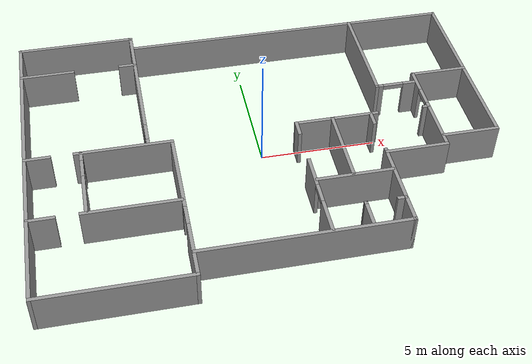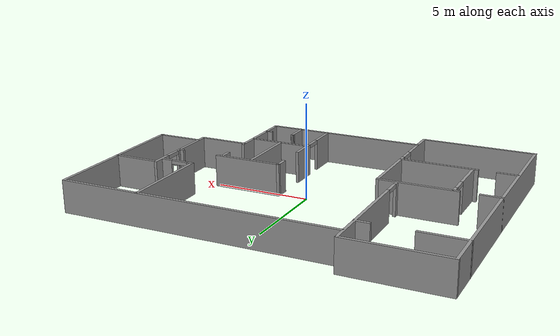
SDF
<?xml version='1.0'?>
<sdf version='1.7'>
  <model name='pangyon_home_plane_a'>
    <pose>-0.066999 0.094435 0 0 -0 0</pose>
    <link name='Wall_0'>
      <collision name='Wall_0_Collision'>
        <geometry>
          <box>
            <size>14.577 0.15 1.7</size>
          </box>
        </geometry>
        <pose>0 0 0.85 0 -0 0</pose>
      </collision>
      <visual name='Wall_0_Visual'>
        <pose>0 0 0.85 0 -0 0</pose>
        <geometry>
          <box>
            <size>14.577 0.15 1.7</size>
          </box>
        </geometry>
        <material>
          <script>
            <uri>file://media/materials/scripts/gazebo.material</uri>
            <name>Gazebo/Grey</name>
          </script>
          <ambient>1 1 1 1</ambient>
        </material>
        <meta>
          <layer>0</layer>
        </meta>
      </visual>
      <pose>-9.863 6.5e-05 0 0 -0 -1.5708</pose>
    </link>
    <link name='Wall_10'>
      <pose>-7.322 5.28357 0 0 -0 0</pose>
      <visual name='Wall_10_Visual_0'>
        <pose>-1.40501 0 0.85 0 -0 0</pose>
        <geometry>
          <box>
            <size>2.43997 0.15 1.7</size>
          </box>
        </geometry>
        <material>
          <script>
            <uri>file://media/materials/scripts/gazebo.material</uri>
            <name>Gazebo/Grey</name>
          </script>
          <ambient>1 1 1 1</ambient>
        </material>
        <meta>
          <layer>0</layer>
        </meta>
      </visual>
      <collision name='Wall_10_Collision_0'>
        <geometry>
          <box>
            <size>2.43997 0.15 1.7</size>
          </box>
        </geometry>
        <pose>-1.40501 0 0.85 0 -0 0</pose>
      </collision>
      <visual name='Wall_10_Visual_1'>
        <pose>2.21998 0 0.85 0 -0 0</pose>
        <geometry>
          <box>
            <size>0.81003 0.15 1.7</size>
          </box>
        </geometry>
        <material>
          <script>
            <uri>file://media/materials/scripts/gazebo.material</uri>
            <name>Gazebo/Grey</name>
          </script>
          <ambient>1 1 1 1</ambient>
        </material>
        <meta>
          <layer>0</layer>
        </meta>
      </visual>
      <collision name='Wall_10_Collision_1'>
        <geometry>
          <box>
            <size>0.81003 0.15 1.7</size>
          </box>
        </geometry>
        <pose>2.21998 0 0.85 0 -0 0</pose>
      </collision>
    </link>
    <link name='Wall_13'>
      <pose>-6.824 -3.43643 0 0 -0 0</pose>
      <visual name='Wall_13_Visual_0'>
        <pose>-2.50904 0 0.85 0 -0 0</pose>
        <geometry>
          <box>
            <size>1.18192 0.15 1.7</size>
          </box>
        </geometry>
        <material>
          <script>
            <uri>file://media/materials/scripts/gazebo.material</uri>
            <name>Gazebo/Grey</name>
          </script>
          <ambient>1 1 1 1</ambient>
        </material>
        <meta>
          <layer>0</layer>
        </meta>
      </visual>
      <collision name='Wall_13_Collision_0'>
        <geometry>
          <box>
            <size>1.18192 0.15 1.7</size>
          </box>
        </geometry>
        <pose>-2.50904 0 0.85 0 -0 0</pose>
      </collision>
      <visual name='Wall_13_Visual_1'>
        <pose>1.04096 0 0.85 0 -0 0</pose>
        <geometry>
          <box>
            <size>4.11808 0.15 1.7</size>
          </box>
        </geometry>
        <material>
          <script>
            <uri>file://media/materials/scripts/gazebo.material</uri>
            <name>Gazebo/Grey</name>
          </script>
          <ambient>1 1 1 1</ambient>
        </material>
        <meta>
          <layer>0</layer>
        </meta>
      </visual>
      <collision name='Wall_13_Collision_1'>
        <geometry>
          <box>
            <size>4.11808 0.15 1.7</size>
          </box>
        </geometry>
        <pose>1.04096 0 0.85 0 -0 0</pose>
      </collision>
    </link>
    <link name='Wall_15'>
      <pose>-7.561 -1.72744 0 0 -0 -1.5708</pose>
      <visual name='Wall_15_Visual_0'>
        <pose>-1.46108 0 0.85 0 -0 0</pose>
        <geometry>
          <box>
            <size>0.477842 0.15 1.7</size>
          </box>
        </geometry>
        <material>
          <script>
            <uri>file://media/materials/scripts/gazebo.material</uri>
            <name>Gazebo/Grey</name>
          </script>
          <ambient>1 1 1 1</ambient>
        </material>
        <meta>
          <layer>0</layer>
        </meta>
      </visual>
      <collision name='Wall_15_Collision_0'>
        <geometry>
          <box>
            <size>0.477842 0.15 1.7</size>
          </box>
        </geometry>
        <pose>-1.46108 0 0.85 0 -0 0</pose>
      </collision>
      <visual name='Wall_15_Visual_1'>
        <pose>0.688921 0 0.85 0 -0 0</pose>
        <geometry>
          <box>
            <size>2.02216 0.15 1.7</size>
          </box>
        </geometry>
        <material>
          <script>
            <uri>file://media/materials/scripts/gazebo.material</uri>
            <name>Gazebo/Grey</name>
          </script>
          <ambient>1 1 1 1</ambient>
        </material>
        <meta>
          <layer>0</layer>
        </meta>
      </visual>
      <collision name='Wall_15_Collision_1'>
        <geometry>
          <box>
            <size>2.02216 0.15 1.7</size>
          </box>
        </geometry>
        <pose>0.688921 0 0.85 0 -0 0</pose>
      </collision>
      <visual name='Wall_15_Visual_2'>
        <pose>-0.772158 0 1.6 0 -0 0</pose>
        <geometry>
          <box>
            <size>0.9 0.15 0.2</size>
          </box>
        </geometry>
        <material>
          <script>
            <uri>file://media/materials/scripts/gazebo.material</uri>
            <name>Gazebo/Grey</name>
          </script>
          <ambient>1 1 1 1</ambient>
        </material>
        <meta>
          <layer>0</layer>
        </meta>
      </visual>
      <collision name='Wall_15_Collision_2'>
        <geometry>
          <box>
            <size>0.9 0.15 0.2</size>
          </box>
        </geometry>
        <pose>-0.772158 0 1.6 0 -0 0</pose>
      </collision>
    </link>
    <link name='Wall_17'>
      <pose>-3.763 -3.64044 0 0 -0 -1.5708</pose>
      <visual name='Wall_17_Visual_0'>
        <pose>-1.73133 0 0.85 0 -0 0</pose>
        <geometry>
          <box>
            <size>3.83361 0.15 1.7</size>
          </box>
        </geometry>
        <material>
          <script>
            <uri>file://media/materials/scripts/gazebo.material</uri>
            <name>Gazebo/Grey</name>
          </script>
          <ambient>1 1 1 1</ambient>
        </material>
        <meta>
          <layer>0</layer>
        </meta>
      </visual>
      <collision name='Wall_17_Collision_0'>
        <geometry>
          <box>
            <size>3.83361 0.15 1.7</size>
          </box>
        </geometry>
        <pose>-1.73133 0 0.85 0 -0 0</pose>
      </collision>
      <visual name='Wall_17_Visual_1'>
        <pose>2.3668 0 0.85 0 -0 0</pose>
        <geometry>
          <box>
            <size>2.56265 0.15 1.7</size>
          </box>
        </geometry>
        <material>
          <script>
            <uri>file://media/materials/scripts/gazebo.material</uri>
            <name>Gazebo/Grey</name>
          </script>
          <ambient>1 1 1 1</ambient>
        </material>
        <meta>
          <layer>0</layer>
        </meta>
      </visual>
      <collision name='Wall_17_Collision_1'>
        <geometry>
          <box>
            <size>2.56265 0.15 1.7</size>
          </box>
        </geometry>
        <pose>2.3668 0 0.85 0 -0 0</pose>
      </collision>
      <visual name='Wall_17_Visual_2'>
        <pose>0.635478 0 1.6 0 -0 0</pose>
        <geometry>
          <box>
            <size>0.9 0.15 0.2</size>
          </box>
        </geometry>
        <material>
          <script>
            <uri>file://media/materials/scripts/gazebo.material</uri>
            <name>Gazebo/Grey</name>
          </script>
          <ambient>1 1 1 1</ambient>
        </material>
        <meta>
          <layer>0</layer>
        </meta>
      </visual>
      <collision name='Wall_17_Collision_2'>
        <geometry>
          <box>
            <size>0.9 0.15 0.2</size>
          </box>
        </geometry>
        <pose>0.635478 0 1.6 0 -0 0</pose>
      </collision>
    </link>
    <link name='Wall_2'>
      <collision name='Wall_2_Collision'>
        <geometry>
          <box>
            <size>6.25 0.15 1.7</size>
          </box>
        </geometry>
        <pose>0 0 0.85 0 -0 0</pose>
      </collision>
      <visual name='Wall_2_Visual'>
        <pose>0 0 0.85 0 -0 0</pose>
        <geometry>
          <box>
            <size>6.25 0.15 1.7</size>
          </box>
        </geometry>
        <material>
          <script>
            <uri>file://media/materials/scripts/gazebo.material</uri>
            <name>Gazebo/Grey</name>
          </script>
          <ambient>1 1 1 1</ambient>
        </material>
        <meta>
          <layer>0</layer>
        </meta>
      </visual>
      <pose>-6.813 -7.21343 0 0 -0 0</pose>
    </link>
    <link name='Wall_20'>
      <collision name='Wall_20_Collision'>
        <geometry>
          <box>
            <size>14.75 0.15 1.7</size>
          </box>
        </geometry>
        <pose>0 0 0.85 0 -0 0</pose>
      </collision>
      <visual name='Wall_20_Visual'>
        <pose>0 0 0.85 0 -0 0</pose>
        <geometry>
          <box>
            <size>14.75 0.15 1.7</size>
          </box>
        </geometry>
        <material>
          <script>
            <uri>file://media/materials/scripts/gazebo.material</uri>
            <name>Gazebo/Grey</name>
          </script>
          <ambient>1 1 1 1</ambient>
        </material>
        <meta>
          <layer>0</layer>
        </meta>
      </visual>
      <pose>2.572 6.47157 0 0 -0 0</pose>
    </link>
    <link name='Wall_22'>
      <collision name='Wall_22_Collision'>
        <geometry>
          <box>
            <size>8.47355 0.15 1.7</size>
          </box>
        </geometry>
        <pose>0 0 0.85 0 -0 0</pose>
      </collision>
      <visual name='Wall_22_Visual'>
        <pose>0 0 0.85 0 -0 0</pose>
        <geometry>
          <box>
            <size>8.47355 0.15 1.7</size>
          </box>
        </geometry>
        <material>
          <script>
            <uri>file://media/materials/scripts/gazebo.material</uri>
            <name>Gazebo/Grey</name>
          </script>
          <ambient>1 1 1 1</ambient>
        </material>
        <meta>
          <layer>0</layer>
        </meta>
      </visual>
      <pose>9.872 2.30979 0 0 -0 -1.5708</pose>
    </link>
    <link name='Wall_24'>
      <collision name='Wall_24_Collision'>
        <geometry>
          <box>
            <size>2.5 0.15 1.7</size>
          </box>
        </geometry>
        <pose>0 0 0.85 0 -0 0</pose>
      </collision>
      <visual name='Wall_24_Visual'>
        <pose>0 0 0.85 0 -0 0</pose>
        <geometry>
          <box>
            <size>2.5 0.15 1.7</size>
          </box>
        </geometry>
        <material>
          <script>
            <uri>file://media/materials/scripts/gazebo.material</uri>
            <name>Gazebo/Grey</name>
          </script>
          <ambient>1 1 1 1</ambient>
        </material>
        <meta>
          <layer>0</layer>
        </meta>
      </visual>
      <pose>8.697 -1.86521 0 0 -0 3.14159</pose>
    </link>
    <link name='Wall_26'>
      <collision name='Wall_26_Collision'>
        <geometry>
          <box>
            <size>2.5 0.15 1.7</size>
          </box>
        </geometry>
        <pose>0 0 0.85 0 -0 0</pose>
      </collision>
      <visual name='Wall_26_Visual'>
        <pose>0 0 0.85 0 -0 0</pose>
        <geometry>
          <box>
            <size>2.5 0.15 1.7</size>
          </box>
        </geometry>
        <material>
          <script>
            <uri>file://media/materials/scripts/gazebo.material</uri>
            <name>Gazebo/Grey</name>
          </script>
          <ambient>1 1 1 1</ambient>
        </material>
        <meta>
          <layer>0</layer>
        </meta>
      </visual>
      <pose>8.697 2.22356 0 0 -0 0</pose>
    </link>
    <link name='Wall_28'>
      <pose>4.513 0.021565 0 0 -0 0</pose>
      <visual name='Wall_28_Visual_0'>
        <pose>-1.15238 0 0.85 0 -0 0</pose>
        <geometry>
          <box>
            <size>3.69524 0.15 1.7</size>
          </box>
        </geometry>
        <material>
          <script>
            <uri>file://media/materials/scripts/gazebo.material</uri>
            <name>Gazebo/Grey</name>
          </script>
          <ambient>1 1 1 1</ambient>
        </material>
        <meta>
          <layer>0</layer>
        </meta>
      </visual>
      <collision name='Wall_28_Collision_0'>
        <geometry>
          <box>
            <size>3.69524 0.15 1.7</size>
          </box>
        </geometry>
        <pose>-1.15238 0 0.85 0 -0 0</pose>
      </collision>
      <visual name='Wall_28_Visual_1'>
        <pose>2.84762 0 0.85 0 -0 0</pose>
        <geometry>
          <box>
            <size>0.304755 0.15 1.7</size>
          </box>
        </geometry>
        <material>
          <script>
            <uri>file://media/materials/scripts/gazebo.material</uri>
            <name>Gazebo/Grey</name>
          </script>
          <ambient>1 1 1 1</ambient>
        </material>
        <meta>
          <layer>0</layer>
        </meta>
      </visual>
      <collision name='Wall_28_Collision_1'>
        <geometry>
          <box>
            <size>0.304755 0.15 1.7</size>
          </box>
        </geometry>
        <pose>2.84762 0 0.85 0 -0 0</pose>
      </collision>
    </link>
    <link name='Wall_30'>
      <pose>1.588 -3.02843 0 0 -0 -1.5708</pose>
      <visual name='Wall_30_Visual_0'>
        <pose>-2.74002 0 0.85 0 -0 0</pose>
        <geometry>
          <box>
            <size>0.769961 0.15 1.7</size>
          </box>
        </geometry>
        <material>
          <script>
            <uri>file://media/materials/scripts/gazebo.material</uri>
            <name>Gazebo/Grey</name>
          </script>
          <ambient>1 1 1 1</ambient>
        </material>
        <meta>
          <layer>0</layer>
        </meta>
      </visual>
      <collision name='Wall_30_Collision_0'>
        <geometry>
          <box>
            <size>0.769961 0.15 1.7</size>
          </box>
        </geometry>
        <pose>-2.74002 0 0.85 0 -0 0</pose>
      </collision>
      <visual name='Wall_30_Visual_1'>
        <pose>-0.111408 0 0.85 0 -0 0</pose>
        <geometry>
          <box>
            <size>1.48726 0.15 1.7</size>
          </box>
        </geometry>
        <material>
          <script>
            <uri>file://media/materials/scripts/gazebo.material</uri>
            <name>Gazebo/Grey</name>
          </script>
          <ambient>1 1 1 1</ambient>
        </material>
        <meta>
          <layer>0</layer>
        </meta>
      </visual>
      <collision name='Wall_30_Collision_1'>
        <geometry>
          <box>
            <size>1.48726 0.15 1.7</size>
          </box>
        </geometry>
        <pose>-0.111408 0 0.85 0 -0 0</pose>
      </collision>
      <visual name='Wall_30_Visual_2'>
        <pose>2.32861 0 0.85 0 -0 0</pose>
        <geometry>
          <box>
            <size>1.59278 0.15 1.7</size>
          </box>
        </geometry>
        <material>
          <script>
            <uri>file://media/materials/scripts/gazebo.material</uri>
            <name>Gazebo/Grey</name>
          </script>
          <ambient>1 1 1 1</ambient>
        </material>
        <meta>
          <layer>0</layer>
        </meta>
      </visual>
      <collision name='Wall_30_Collision_2'>
        <geometry>
          <box>
            <size>1.59278 0.15 1.7</size>
          </box>
        </geometry>
        <pose>2.32861 0 0.85 0 -0 0</pose>
      </collision>
      <visual name='Wall_30_Visual_3'>
        <pose>1.08222 0 1.6 0 -0 0</pose>
        <geometry>
          <box>
            <size>0.9 0.15 0.2</size>
          </box>
        </geometry>
        <material>
          <script>
            <uri>file://media/materials/scripts/gazebo.material</uri>
            <name>Gazebo/Grey</name>
          </script>
          <ambient>1 1 1 1</ambient>
        </material>
        <meta>
          <layer>0</layer>
        </meta>
      </visual>
      <collision name='Wall_30_Collision_3'>
        <geometry>
          <box>
            <size>0.9 0.15 0.2</size>
          </box>
        </geometry>
        <pose>1.08222 0 1.6 0 -0 0</pose>
      </collision>
    </link>
    <link name='Wall_32'>
      <collision name='Wall_32_Collision'>
        <geometry>
          <box>
            <size>8.75 0.15 1.7</size>
          </box>
        </geometry>
        <pose>0 0 0.85 0 -0 0</pose>
      </collision>
      <visual name='Wall_32_Visual'>
        <pose>0 0 0.85 0 -0 0</pose>
        <geometry>
          <box>
            <size>8.75 0.15 1.7</size>
          </box>
        </geometry>
        <material>
          <script>
            <uri>file://media/materials/scripts/gazebo.material</uri>
            <name>Gazebo/Grey</name>
          </script>
          <ambient>1 1 1 1</ambient>
        </material>
        <meta>
          <layer>0</layer>
        </meta>
      </visual>
      <pose>0.562999 -6.13344 0 0 -0 0</pose>
    </link>
    <link name='Wall_33'>
      <pose>4.863 -3.08344 0 0 -0 1.5708</pose>
      <visual name='Wall_33_Visual_0'>
        <pose>-1.10173 0 0.85 0 -0 0</pose>
        <geometry>
          <box>
            <size>4.04654 0.15 1.7</size>
          </box>
        </geometry>
        <material>
          <script>
            <uri>file://media/materials/scripts/gazebo.material</uri>
            <name>Gazebo/Grey</name>
          </script>
          <ambient>1 1 1 1</ambient>
        </material>
        <meta>
          <layer>0</layer>
        </meta>
      </visual>
      <collision name='Wall_33_Collision_0'>
        <geometry>
          <box>
            <size>4.04654 0.15 1.7</size>
          </box>
        </geometry>
        <pose>-1.10173 0 0.85 0 -0 0</pose>
      </collision>
      <visual name='Wall_33_Visual_1'>
        <pose>2.77327 0 0.85 0 -0 0</pose>
        <geometry>
          <box>
            <size>0.703461 0.15 1.7</size>
          </box>
        </geometry>
        <material>
          <script>
            <uri>file://media/materials/scripts/gazebo.material</uri>
            <name>Gazebo/Grey</name>
          </script>
          <ambient>1 1 1 1</ambient>
        </material>
        <meta>
          <layer>0</layer>
        </meta>
      </visual>
      <collision name='Wall_33_Collision_1'>
        <geometry>
          <box>
            <size>0.703461 0.15 1.7</size>
          </box>
        </geometry>
        <pose>2.77327 0 0.85 0 -0 0</pose>
      </collision>
    </link>
    <link name='Wall_35'>
      <collision name='Wall_35_Collision'>
        <geometry>
          <box>
            <size>2.75 0.15 1.7</size>
          </box>
        </geometry>
        <pose>0 0 0.85 0 -0 0</pose>
      </collision>
      <visual name='Wall_35_Visual'>
        <pose>0 0 0.85 0 -0 0</pose>
        <geometry>
          <box>
            <size>2.75 0.15 1.7</size>
          </box>
        </geometry>
        <material>
          <script>
            <uri>file://media/materials/scripts/gazebo.material</uri>
            <name>Gazebo/Grey</name>
          </script>
          <ambient>1 1 1 1</ambient>
        </material>
        <meta>
          <layer>0</layer>
        </meta>
      </visual>
      <pose>6.18 -2.37341 0 0 -0 0</pose>
    </link>
    <link name='Wall_37'>
      <pose>7.48 -0.069065 0 0 -0 1.5708</pose>
      <visual name='Wall_37_Visual_0'>
        <pose>-1.0268 0 0.85 0 -0 0</pose>
        <geometry>
          <box>
            <size>2.69367 0.15 1.7</size>
          </box>
        </geometry>
        <material>
          <script>
            <uri>file://media/materials/scripts/gazebo.material</uri>
            <name>Gazebo/Grey</name>
          </script>
          <ambient>1 1 1 1</ambient>
        </material>
        <meta>
          <layer>0</layer>
        </meta>
      </visual>
      <collision name='Wall_37_Collision_0'>
        <geometry>
          <box>
            <size>2.69367 0.15 1.7</size>
          </box>
        </geometry>
        <pose>-1.0268 0 0.85 0 -0 0</pose>
      </collision>
      <visual name='Wall_37_Visual_1'>
        <pose>1.79683 0 0.85 0 -0 0</pose>
        <geometry>
          <box>
            <size>1.15359 0.15 1.7</size>
          </box>
        </geometry>
        <material>
          <script>
            <uri>file://media/materials/scripts/gazebo.material</uri>
            <name>Gazebo/Grey</name>
          </script>
          <ambient>1 1 1 1</ambient>
        </material>
        <meta>
          <layer>0</layer>
        </meta>
      </visual>
      <collision name='Wall_37_Collision_1'>
        <geometry>
          <box>
            <size>1.15359 0.15 1.7</size>
          </box>
        </geometry>
        <pose>1.79683 0 0.85 0 -0 0</pose>
      </collision>
      <visual name='Wall_37_Visual_2'>
        <pose>0.770039 0 1.6 0 -0 0</pose>
        <geometry>
          <box>
            <size>0.9 0.15 0.2</size>
          </box>
        </geometry>
        <material>
          <script>
            <uri>file://media/materials/scripts/gazebo.material</uri>
            <name>Gazebo/Grey</name>
          </script>
          <ambient>1 1 1 1</ambient>
        </material>
        <meta>
          <layer>0</layer>
        </meta>
      </visual>
      <collision name='Wall_37_Collision_2'>
        <geometry>
          <box>
            <size>0.9 0.15 0.2</size>
          </box>
        </geometry>
        <pose>0.770039 0 1.6 0 -0 0</pose>
      </collision>
    </link>
    <link name='Wall_39'>
      <collision name='Wall_39_Collision'>
        <geometry>
          <box>
            <size>3.3 0.15 1.7</size>
          </box>
        </geometry>
        <pose>0 0 0.85 0 -0 0</pose>
      </collision>
      <visual name='Wall_39_Visual'>
        <pose>0 0 0.85 0 -0 0</pose>
        <geometry>
          <box>
            <size>3.3 0.15 1.7</size>
          </box>
        </geometry>
        <material>
          <script>
            <uri>file://media/materials/scripts/gazebo.material</uri>
            <name>Gazebo/Grey</name>
          </script>
          <ambient>1 1 1 1</ambient>
        </material>
        <meta>
          <layer>0</layer>
        </meta>
      </visual>
      <pose>3.227 -3.37943 0 0 -0 0</pose>
    </link>
    <link name='Wall_41'>
      <collision name='Wall_41_Collision'>
        <geometry>
          <box>
            <size>3.5 0.15 1.7</size>
          </box>
        </geometry>
        <pose>0 0 0.85 0 -0 0</pose>
      </collision>
      <visual name='Wall_41_Visual'>
        <pose>0 0 0.85 0 -0 0</pose>
        <geometry>
          <box>
            <size>3.5 0.15 1.7</size>
          </box>
        </geometry>
        <material>
          <script>
            <uri>file://media/materials/scripts/gazebo.material</uri>
            <name>Gazebo/Grey</name>
          </script>
          <ambient>1 1 1 1</ambient>
        </material>
        <meta>
          <layer>0</layer>
        </meta>
      </visual>
      <pose>3.17398 -1.68387 0 0 -0 -1.5708</pose>
    </link>
    <link name='Wall_43'>
      <collision name='Wall_43_Collision'>
        <geometry>
          <box>
            <size>1.256 0.15 1.7</size>
          </box>
        </geometry>
        <pose>0 0 0.85 0 -0 0</pose>
      </collision>
      <visual name='Wall_43_Visual'>
        <pose>0 0 0.85 0 -0 0</pose>
        <geometry>
          <box>
            <size>1.256 0.15 1.7</size>
          </box>
        </geometry>
        <material>
          <script>
            <uri>file://media/materials/scripts/gazebo.material</uri>
            <name>Gazebo/Grey</name>
          </script>
          <ambient>1 1 1 1</ambient>
        </material>
        <meta>
          <layer>0</layer>
        </meta>
      </visual>
      <pose>3.222 -5.52543 0 0 -0 -1.5708</pose>
    </link>
    <link name='Wall_45'>
      <pose>4.022 -4.97293 0 0 -0 -0.000625</pose>
      <visual name='Wall_45_Visual_0'>
        <pose>-0.799303 0 0.85 0 -0 0</pose>
        <geometry>
          <box>
            <size>0.151394 0.15 1.7</size>
          </box>
        </geometry>
        <material>
          <script>
            <uri>file://media/materials/scripts/gazebo.material</uri>
            <name>Gazebo/Grey</name>
          </script>
          <ambient>1 1 1 1</ambient>
        </material>
        <meta>
          <layer>0</layer>
        </meta>
      </visual>
      <collision name='Wall_45_Collision_0'>
        <geometry>
          <box>
            <size>0.151394 0.15 1.7</size>
          </box>
        </geometry>
        <pose>-0.799303 0 0.85 0 -0 0</pose>
      </collision>
      <visual name='Wall_45_Visual_1'>
        <pose>0.675697 0 0.85 0 -0 0</pose>
        <geometry>
          <box>
            <size>0.398606 0.15 1.7</size>
          </box>
        </geometry>
        <material>
          <script>
            <uri>file://media/materials/scripts/gazebo.material</uri>
            <name>Gazebo/Grey</name>
          </script>
          <ambient>1 1 1 1</ambient>
        </material>
        <meta>
          <layer>0</layer>
        </meta>
      </visual>
      <collision name='Wall_45_Collision_1'>
        <geometry>
          <box>
            <size>0.398606 0.15 1.7</size>
          </box>
        </geometry>
        <pose>0.675697 0 0.85 0 -0 0</pose>
      </collision>
    </link>
    <link name='Wall_47'>
      <collision name='Wall_47_Collision'>
        <geometry>
          <box>
            <size>4.9 0.15 1.7</size>
          </box>
        </geometry>
        <pose>0 0 0.85 0 -0 0</pose>
      </collision>
      <visual name='Wall_47_Visual'>
        <pose>0 0 0.85 0 -0 0</pose>
        <geometry>
          <box>
            <size>4.9 0.15 1.7</size>
          </box>
        </geometry>
        <material>
          <script>
            <uri>file://media/materials/scripts/gazebo.material</uri>
            <name>Gazebo/Grey</name>
          </script>
          <ambient>1 1 1 1</ambient>
        </material>
        <meta>
          <layer>0</layer>
        </meta>
      </visual>
      <pose>5.657 4.08456 0 0 -0 -1.5708</pose>
    </link>
    <link name='Wall_48'>
      <pose>6.532 1.70957 0 0 -0 0</pose>
      <visual name='Wall_48_Visual_0'>
        <pose>-0.772188 0 0.85 0 -0 0</pose>
        <geometry>
          <box>
            <size>0.355624 0.15 1.7</size>
          </box>
        </geometry>
        <material>
          <script>
            <uri>file://media/materials/scripts/gazebo.material</uri>
            <name>Gazebo/Grey</name>
          </script>
          <ambient>1 1 1 1</ambient>
        </material>
        <meta>
          <layer>0</layer>
        </meta>
      </visual>
      <collision name='Wall_48_Collision_0'>
        <geometry>
          <box>
            <size>0.355624 0.15 1.7</size>
          </box>
        </geometry>
        <pose>-0.772188 0 0.85 0 -0 0</pose>
      </collision>
      <visual name='Wall_48_Visual_1'>
        <pose>0.627812 0 0.85 0 -0 0</pose>
        <geometry>
          <box>
            <size>0.644376 0.15 1.7</size>
          </box>
        </geometry>
        <material>
          <script>
            <uri>file://media/materials/scripts/gazebo.material</uri>
            <name>Gazebo/Grey</name>
          </script>
          <ambient>1 1 1 1</ambient>
        </material>
        <meta>
          <layer>0</layer>
        </meta>
      </visual>
      <collision name='Wall_48_Collision_1'>
        <geometry>
          <box>
            <size>0.644376 0.15 1.7</size>
          </box>
        </geometry>
        <pose>0.627812 0 0.85 0 -0 0</pose>
      </collision>
      <visual name='Wall_48_Visual_2'>
        <pose>-0.144376 0 1.6 0 -0 0</pose>
        <geometry>
          <box>
            <size>0.9 0.15 0.2</size>
          </box>
        </geometry>
        <material>
          <script>
            <uri>file://media/materials/scripts/gazebo.material</uri>
            <name>Gazebo/Grey</name>
          </script>
          <ambient>1 1 1 1</ambient>
        </material>
        <meta>
          <layer>0</layer>
        </meta>
      </visual>
      <collision name='Wall_48_Collision_2'>
        <geometry>
          <box>
            <size>0.9 0.15 0.2</size>
          </box>
        </geometry>
        <pose>-0.144376 0 1.6 0 -0 0</pose>
      </collision>
    </link>
    <link name='Wall_5'>
      <pose>-6.813 -0.067435 0 0 -0 3.14159</pose>
      <visual name='Wall_5_Visual_0'>
        <pose>-1.03026 0 0.85 0 -0 0</pose>
        <geometry>
          <box>
            <size>4.18948 0.15 1.7</size>
          </box>
        </geometry>
        <material>
          <script>
            <uri>file://media/materials/scripts/gazebo.material</uri>
            <name>Gazebo/Grey</name>
          </script>
          <ambient>1 1 1 1</ambient>
        </material>
        <meta>
          <layer>0</layer>
        </meta>
      </visual>
      <collision name='Wall_5_Collision_0'>
        <geometry>
          <box>
            <size>4.18948 0.15 1.7</size>
          </box>
        </geometry>
        <pose>-1.03026 0 0.85 0 -0 0</pose>
      </collision>
      <visual name='Wall_5_Visual_1'>
        <pose>2.54474 0 0.85 0 -0 0</pose>
        <geometry>
          <box>
            <size>1.16052 0.15 1.7</size>
          </box>
        </geometry>
        <material>
          <script>
            <uri>file://media/materials/scripts/gazebo.material</uri>
            <name>Gazebo/Grey</name>
          </script>
          <ambient>1 1 1 1</ambient>
        </material>
        <meta>
          <layer>0</layer>
        </meta>
      </visual>
      <collision name='Wall_5_Collision_1'>
        <geometry>
          <box>
            <size>1.16052 0.15 1.7</size>
          </box>
        </geometry>
        <pose>2.54474 0 0.85 0 -0 0</pose>
      </collision>
    </link>
    <link name='Wall_7'>
      <collision name='Wall_7_Collision'>
        <geometry>
          <box>
            <size>5.25 0.15 1.7</size>
          </box>
        </geometry>
        <pose>0 0 0.85 0 -0 0</pose>
      </collision>
      <visual name='Wall_7_Visual'>
        <pose>0 0 0.85 0 -0 0</pose>
        <geometry>
          <box>
            <size>5.25 0.15 1.7</size>
          </box>
        </geometry>
        <material>
          <script>
            <uri>file://media/materials/scripts/gazebo.material</uri>
            <name>Gazebo/Grey</name>
          </script>
          <ambient>1 1 1 1</ambient>
        </material>
        <meta>
          <layer>0</layer>
        </meta>
      </visual>
      <pose>-7.313 7.21357 0 0 -0 0</pose>
    </link>
    <link name='Wall_8'>
      <pose>-4.763 3.64806 0 0 -0 -1.5708</pose>
      <visual name='Wall_8_Visual_0'>
        <pose>-0.569379 0 0.85 0 -0 0</pose>
        <geometry>
          <box>
            <size>6.14224 0.15 1.7</size>
          </box>
        </geometry>
        <material>
          <script>
            <uri>file://media/materials/scripts/gazebo.material</uri>
            <name>Gazebo/Grey</name>
          </script>
          <ambient>1 1 1 1</ambient>
        </material>
        <meta>
          <layer>0</layer>
        </meta>
      </visual>
      <collision name='Wall_8_Collision_0'>
        <geometry>
          <box>
            <size>6.14224 0.15 1.7</size>
          </box>
        </geometry>
        <pose>-0.569379 0 0.85 0 -0 0</pose>
      </collision>
      <visual name='Wall_8_Visual_1'>
        <pose>3.52112 0 0.85 0 -0 0</pose>
        <geometry>
          <box>
            <size>0.238757 0.15 1.7</size>
          </box>
        </geometry>
        <material>
          <script>
            <uri>file://media/materials/scripts/gazebo.material</uri>
            <name>Gazebo/Grey</name>
          </script>
          <ambient>1 1 1 1</ambient>
        </material>
        <meta>
          <layer>0</layer>
        </meta>
      </visual>
      <collision name='Wall_8_Collision_1'>
        <geometry>
          <box>
            <size>0.238757 0.15 1.7</size>
          </box>
        </geometry>
        <pose>3.52112 0 0.85 0 -0 0</pose>
      </collision>
      <visual name='Wall_8_Visual_2'>
        <pose>2.95174 0 1.6 0 -0 0</pose>
        <geometry>
          <box>
            <size>0.9 0.15 0.2</size>
          </box>
        </geometry>
        <material>
          <script>
            <uri>file://media/materials/scripts/gazebo.material</uri>
            <name>Gazebo/Grey</name>
          </script>
          <ambient>1 1 1 1</ambient>
        </material>
        <meta>
          <layer>0</layer>
        </meta>
      </visual>
      <collision name='Wall_8_Collision_2'>
        <geometry>
          <box>
            <size>0.9 0.15 0.2</size>
          </box>
        </geometry>
        <pose>2.95174 0 1.6 0 -0 0</pose>
      </collision>
    </link>
    <static>1</static>
  </model>
</sdf>
